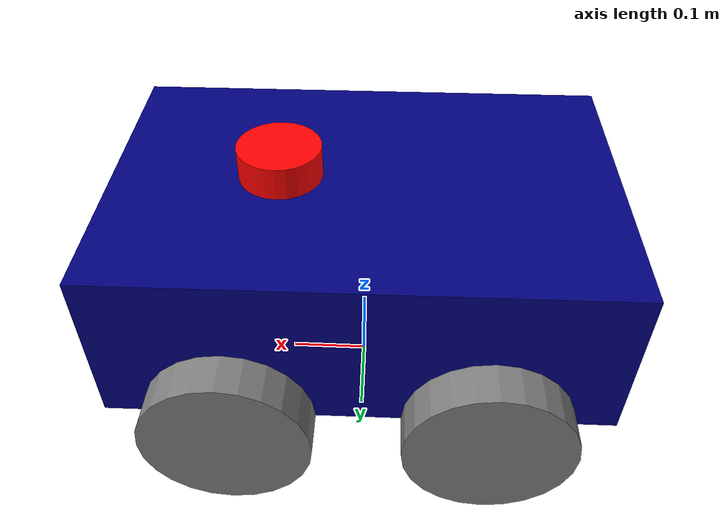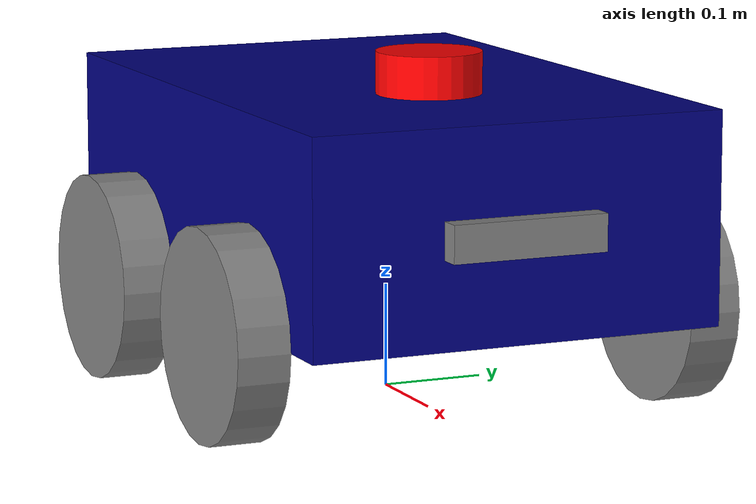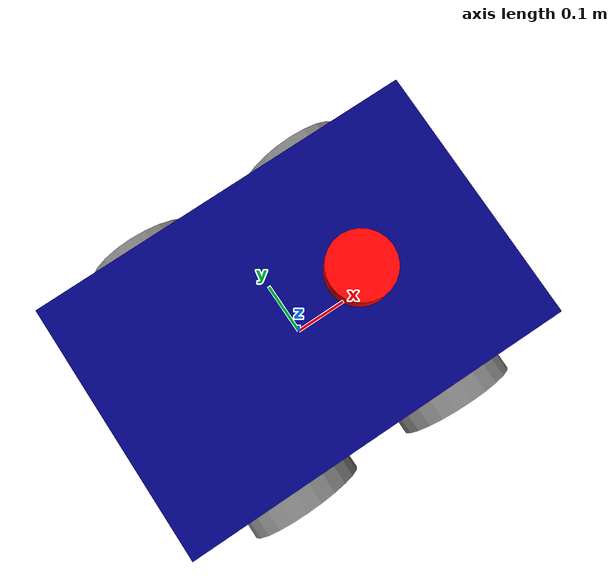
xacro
<?xml version="1.0"?>
<robot name="my_robot" xmlns:xacro="http://www.ros.org/wiki/xacro">

    <xacro:include filename="diff_drive.xacro" />
    <xacro:include filename="camera.xacro" />
    <xacro:include filename="lidar.xacro" />

    <material name="blue">
        <color rgba="0 0 0.5 1" />
    </material>

    <material name="grey">
        <color rgba="0.5 0.5 0.5 1" />
    </material>

    <link name="base_footprint" />

    <link name="base_link">
        <visual>
            <geometry>
                <box size="0.6 0.4 0.2" />
            </geometry>
            <origin xyz="0 0 0.1" rpy="0 0 0" />
            <material name="blue" />
        </visual>
    </link>

    <link name="right_front_wheel_link">
        <visual>
            <geometry>
                <cylinder radius="0.1" length="0.05" />
            </geometry>
            <origin xyz="0 0 0" rpy="1.57 0 0" />
            <material name="grey" />
        </visual>
    </link>

    <link name="right_back_wheel_link">
        <visual>
            <geometry>
                <cylinder radius="0.1" length="0.05" />
            </geometry>
            <origin xyz="0 0 0" rpy="1.57 0 0" />
            <material name="grey" />
        </visual>
    </link>

    <link name="left_front_wheel_link">
        <visual>
            <geometry>
                <cylinder radius="0.1" length="0.05" />
            </geometry>
            <origin xyz="0 0 0" rpy="1.57 0 0" />
            <material name="grey" />
        </visual>
    </link>

    <link name="left_back_wheel_link">
        <visual>
            <geometry>
                <cylinder radius="0.1" length="0.05" />
            </geometry>
            <origin xyz="0 0 0" rpy="1.57 0 0" />
            <material name="grey" />
        </visual>
    </link>

    <joint name="base_joint" type="fixed">
        <parent link="base_footprint" />
        <child link="base_link" />
        <origin xyz="0 0 0.1" rpy="0 0 0"/>
    </joint>

    <joint name="base_right_front_wheel_joint" type="continuous">
        <parent link="base_link" />
        <child link="right_front_wheel_link" />
        <origin xyz="-0.15 -0.225 0" rpy="0 0 0" />
        <axis xyz="0 1 0" />
    </joint>

    <joint name="base_left_front_wheel_joint" type="continuous">
        <parent link="base_link" />
        <child link="left_front_wheel_link" />
        <origin xyz="-0.15 0.225 0" rpy="0 0 0" />
        <axis xyz="0 1 0" />
    </joint>

    <joint name="base_right_back_wheel_joint" type="continuous">
        <parent link="base_link" />
        <child link="right_back_wheel_link" />
        <origin xyz="0.15 -0.225 0" rpy="0 0 0" />
        <axis xyz="0 1 0" />
    </joint>

    <joint name="base_left_back_wheel_joint" type="continuous">
        <parent link="base_link" />
        <child link="left_back_wheel_link" />
        <origin xyz="0.15 0.225 0" rpy="0 0 0" />
        <axis xyz="0 1 0" />
    </joint>

</robot>

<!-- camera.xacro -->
<robot xmlns:xacro="http://www.ros.org/wiki/xacro">

    <xacro:property name="m3" value="0.1" />
    <xacro:property name="l1" value="0.04" />
    <xacro:property name="w1" value="0.15" />
    <xacro:property name="h1" value="0.035" />

    <!--camera plugins-->
  <link name="camera_link">
        <visual>
            <geometry>
                <box size="${l1} ${w1} ${h1}"/>
            </geometry>
            <material name="grey"/>
        </visual>

        <collision>
            <geometry>
                <box size="${l1} ${w1} ${h1}"/>
            </geometry>
        </collision>

        <inertial>
            <origin xyz="0 0 0" rpy="0 0 0"/>
            <mass value="${m3}"/>
            <inertia
                ixx="${(m3/12) * (h1*h1 + l1*l1)}"
                iyy="${(m3/12) * (h1*h1 + w1*w1)}"
                izz="${(m3/12) * (w1*w1 + l1*l1)}"
                ixy="0" ixz="0" iyz="0"/>
        </inertial>
  </link>

    <joint name="camera_joint" type="fixed">
        <parent link="base_link"/>
        <child link="camera_link"/>
        <origin xyz="0.3 0 0.1" rpy="0 0 0"/>
    </joint>

    <!-- camera link optical -->
    <link name="camera_optical_link" />

    <joint name="camera_optical_joint" type="fixed">
        <parent link="camera_link"/>
        <child link="camera_optical_link"/>
        <origin xyz="0 0 0" rpy="-${pi} 0 ${pi}"/>
    </joint>

    <gazebo reference="camera_link">
        <material>Gazebo/Red</material>
        <sensor name="camera_sensor" type="camera">
            <pose>0 0 0 0 0 0</pose>
            <visualize>true</visualize>
            <update_rate>10.0</update_rate>

            <camera>
                <horizontal_fov>1.089</horizontal_fov>
                <image>
                    <format>R8G8B8</format>
                    <width>640</width>
                    <height>480</height>
                </image>
                <clip>
                    <near>0.5</near>
                    <far>8.0</far>
                </clip>
            </camera>

            <plugin name="camera_controller" filename="libgazebo_ros_camera.so">
            <!-- Set TF frame name. If empty, defaults to link name -->
                <frame_name>camera_optical_link</frame_name>
            <!-- Set to true to turn on triggering -->

            <!-- Set some projection matrix fields-->
            <!-- Projection matrix principal point cx-->
            <!-- Projection matrix principal point cy-->
            <!-- Projection matrix focal length fy-->
            <!-- Projection matrix translation Tx, Ty between stereo cameras-->
            <!-- Full 3x3 rectification matrix. Values are in row-major order -->

            </plugin>
        </sensor>
    </gazebo>

</robot>

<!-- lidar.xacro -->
<robot xmlns:xacro="http://www.ros.org/wiki/xacro">

    <xacro:property name="m" value="0.1" />
    <xacro:property name="r" value="0.05" />
    <xacro:property name="L" value="0.04" />

    <material name="red">
        <color rgba="1 0 0 1" />
    </material>

    <joint name="laser_joint" type="fixed">
        <parent link="base_link" />
        <child link="laser_frame" />
        <origin xyz="0.1 0 0.22" rpy="0 0 0" />
    </joint>

    <link name = "laser_frame">
        <visual>
            <geometry>
                <cylinder radius="0.05" length="0.04" />
            </geometry>
            <origin xyz="0 0 0" rpy="0 0 0" />
            <material name="red" />
        </visual>
        <collision>
            <geometry>
                <cylinder radius="0.05" length="0.04" />
            </geometry>
            <origin xyz="0 0 0" rpy="0 0 0" />
        </collision>
        <inertial>
            <mass value="${m}" />
            <inertia
                ixx="${(m/12) * (3*r*r + L*L)}"
                iyy="${(m/12) * (3*r*r + L*L)}"
                izz="${(m/2) * (r*r)}"
                ixy="0" ixz="0" iyz="0" />
        </inertial>

    </link>

    <gazebo reference="laser_frame">
        <material> Gazebo/Black </material>
        <sensor name="laser" type="ray">
            <pose> 0 0 0 0 0 0 </pose>
            <visualize>true</visualize>
            <update_rate>10</update_rate>
            <ray>
                <scan>
                    <horizontal>
                        <samples>360</samples>
                        <resolution>1</resolution>
                        <min_angle>-1.57</min_angle>
                        <max_angle>1.57</max_angle>
                    </horizontal>
                </scan>
                <range>
                    <min>0.3</min>
                    <max>5</max>
                </range>
            </ray>
            <plugin name="laser_controller" filename="libgazebo_ros_ray_sensor.so">
                <ros>
                    <argument>~/out:=scan</argument>
                </ros>
                <output_type>sensor_msgs/LaserScan</output_type>
                <frame_name>laser_frame</frame_name>
            </plugin>
        </sensor>
    </gazebo>

</robot>
